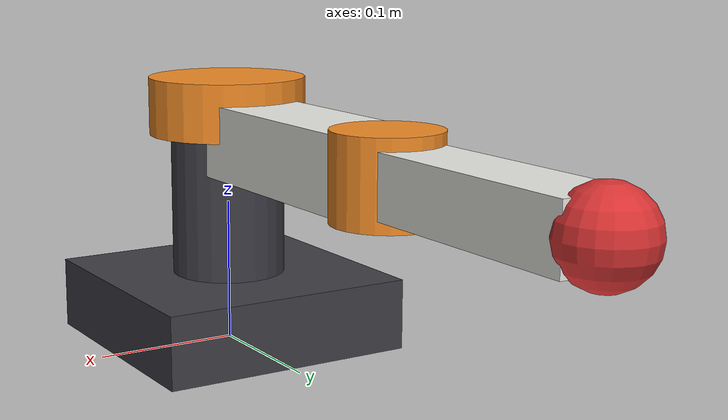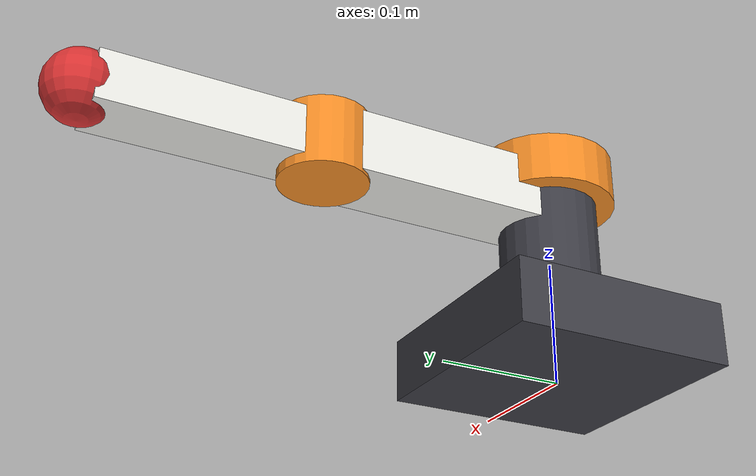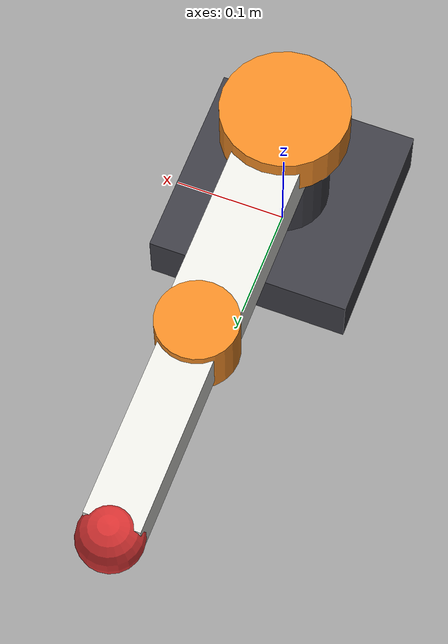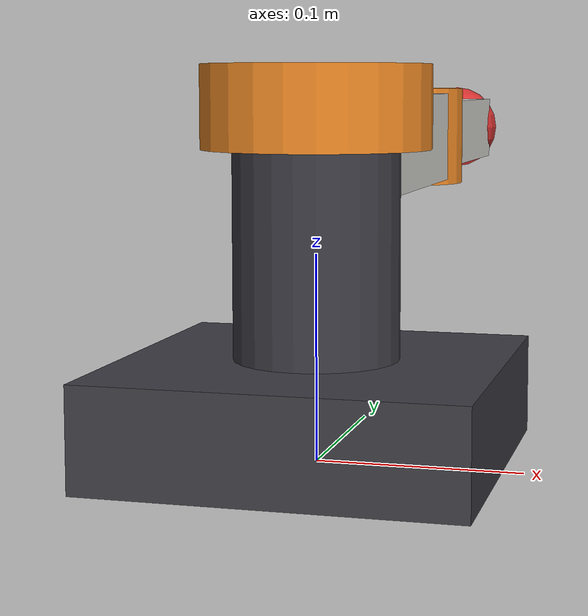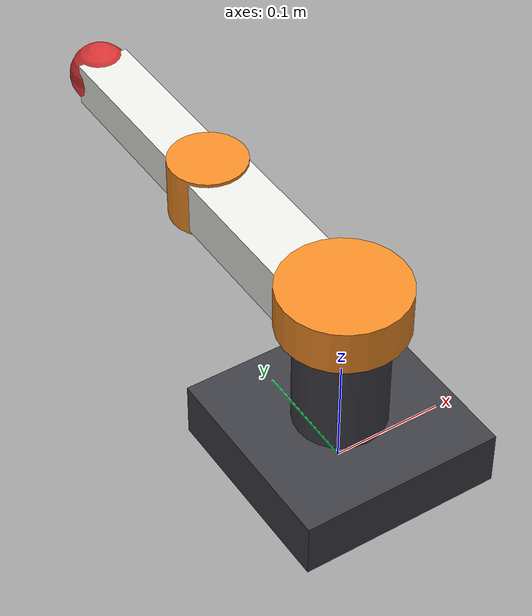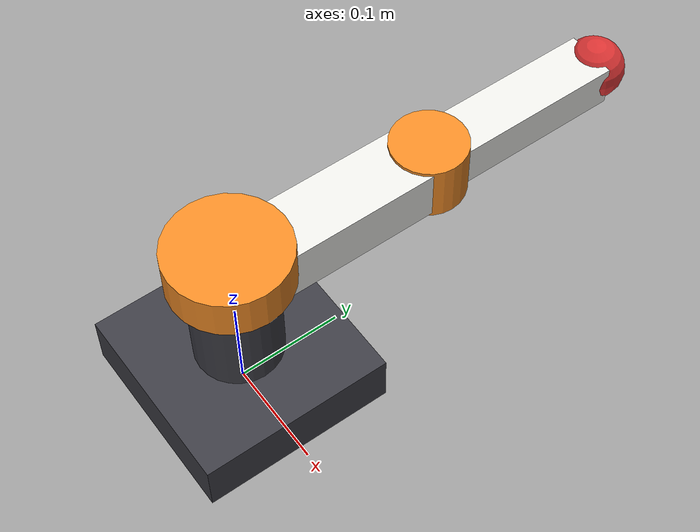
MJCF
<mujoco model="BlockArm">

  <compiler angle="degree"/>
  <default>
    <joint type="hinge" axis="0 0 1" damping="0.5" armature="0.01"/>
    <geom friction="1.0 0.005 0.0001" condim="4" density="600"/>
  </default>

  <worldbody>
    <!-- 底座：底盘 + 立柱（无关节 → spawn 后固定不动）。颜色：炭灰 -->
    <body name="arm_base" pos="0 0 0">
      <geom name="base_plate" type="box" size="0.09 0.09 0.025" pos="0 0 0.025" rgba="0.24 0.24 0.27 1"/>
      <geom name="pedestal" type="cylinder" size="0.04 0.05" pos="0 0 0.10" rgba="0.24 0.24 0.27 1"/>

      <!-- 肩转台：橙色圆盘，绕竖直轴(z)在桌面平面内扫掠，盖在立柱顶上 -->
      <body name="shoulder" pos="0 0 0.15">
        <joint name="shoulder_joint" range="-110 110"/>
        <geom name="turntable" type="cylinder" size="0.055 0.02" pos="0 0 0.02" rgba="0.95 0.55 0.15 1"/>
        <!-- 上臂梁：白色，从转台侧面沿 +y 伸出 0.20m，梁中心与球心等高 -->
        <geom name="upper_arm" type="box" size="0.03 0.10 0.025" pos="0 0.11 0" rgba="0.92 0.92 0.90 1"/>

        <!-- 肘：橙色关节盘（绕z），盖住上臂梁端 -->
        <body name="elbow" pos="0 0.20 0">
          <joint name="elbow_joint" range="-130 130"/>
          <geom name="elbow_puck" type="cylinder" size="0.035 0.028" pos="0 0 0" rgba="0.95 0.55 0.15 1"/>
          <!-- 前臂梁：白色，沿 +y 再延伸 0.16m -->
          <geom name="forearm" type="box" size="0.024 0.08 0.02" pos="0 0.10 0" rgba="0.92 0.92 0.90 1"/>
          <!-- 推球头：红色圆端（推/拨物体的工作端） -->
          <geom name="push_tip" type="sphere" size="0.028" pos="0 0.185 0" rgba="0.85 0.20 0.20 1"/>
        </body>
      </body>
    </body>
  </worldbody>
</mujoco>
